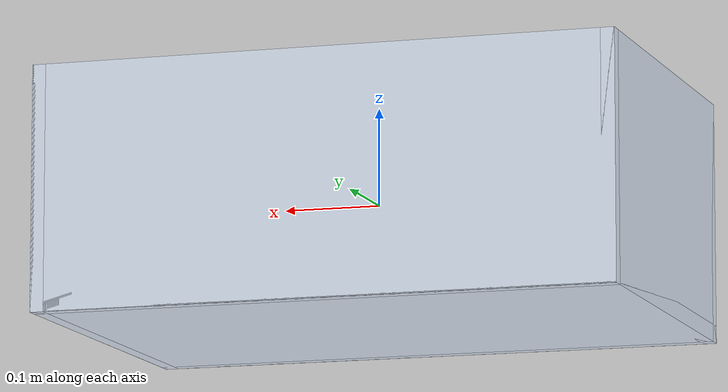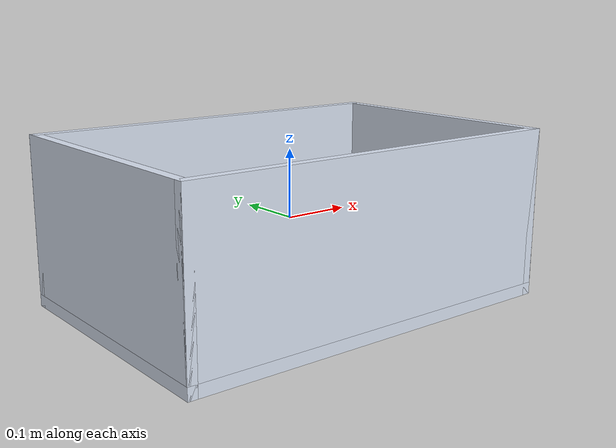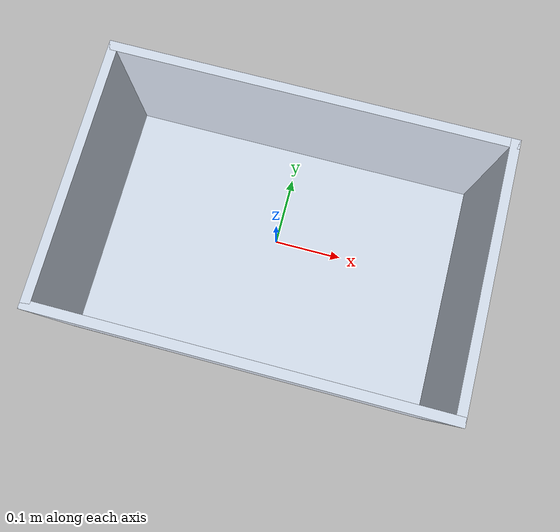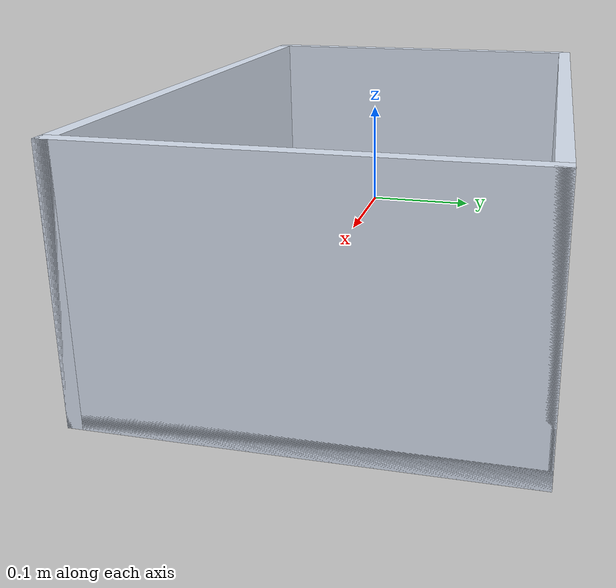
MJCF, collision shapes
<mujoco model="container_h01_60x40x25cm">
  <asset>
    <mesh name="container_h01_mesh" file="siemens/meshes/Container_H01_60x40x25cm_PR_V_NVD_01.obj" scale="1 1 1"/>
    <material name="container_h01_visual_mat" rgba="0.86 0.90 0.96 1" specular="0.25" shininess="0.18"/>
    <material name="container_h01_collision_mat" rgba="0.86 0.90 0.96 0.30" specular="0.05" shininess="0.05"/>
  </asset>

  <worldbody>
    <body>
      <body name="object">
        <inertial pos="0 0 0" mass="0.45" diaginertia="0.0060 0.0100 0.0110"/>

        <geom name="visual"
              type="mesh"
              mesh="container_h01_mesh"
              material="container_h01_visual_mat"
              quat="0.707106781 0.707106781 0 0"
              contype="0"
              conaffinity="0"
              group="1"/>

        <geom name="container_h01_col_bottom" type="box"
              pos="0 0 -0.116"
              size="0.30 0.20 0.009"
              material="container_h01_collision_mat"
              friction="1.0 0.005 0.0001"
              group="0"/>
        <geom name="container_h01_col_front" type="box"
              pos="0 -0.193 0"
              size="0.30 0.007 0.125"
              material="container_h01_collision_mat"
              friction="1.0 0.005 0.0001"
              group="0"/>
        <geom name="container_h01_col_back" type="box"
              pos="0 0.193 0"
              size="0.30 0.007 0.125"
              material="container_h01_collision_mat"
              friction="1.0 0.005 0.0001"
              group="0"/>
        <geom name="container_h01_col_left" type="box"
              pos="-0.293 0 0"
              size="0.007 0.20 0.125"
              material="container_h01_collision_mat"
              friction="1.0 0.005 0.0001"
              group="0"/>
        <geom name="container_h01_col_right" type="box"
              pos="0.293 0 0"
              size="0.007 0.20 0.125"
              material="container_h01_collision_mat"
              friction="1.0 0.005 0.0001"
              group="0"/>
      </body>
      <site rgba="0 0 0 0" size="0.005" pos="0 0 -0.125" name="bottom_site"/>
      <site rgba="0 0 0 0" size="0.005" pos="0 0 0.125" name="top_site"/>
      <site rgba="0 0 0 0" size="0.005" pos="0.30 0.20 0" name="horizontal_radius_site"/>
    </body>
  </worldbody>
</mujoco>
